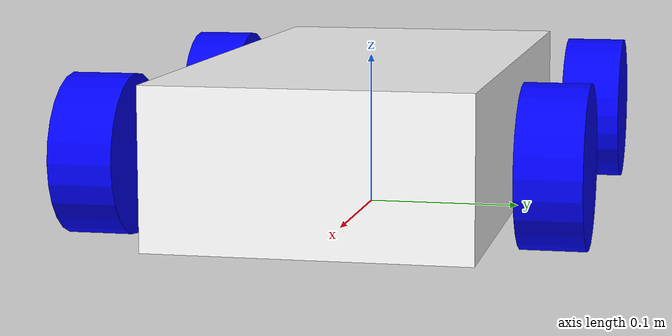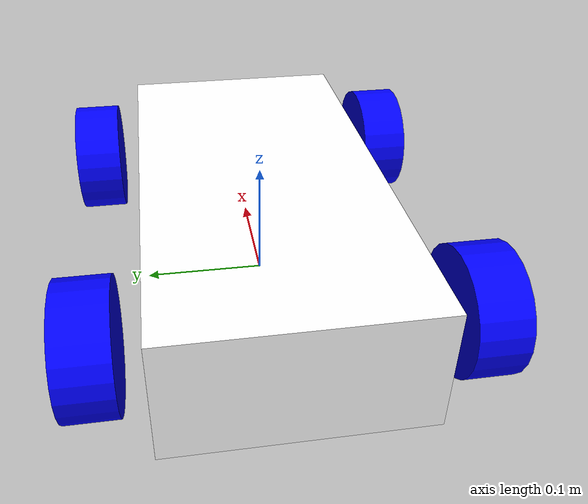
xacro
<?xml version="1.0"?>
<robot xmlns:xacro="http://www.ros.org/wiki/xacro" name="urdf_tutorial">

    <xacro:include filename="macros.xacro"/>

    <material name="white">
        <color rgba="1 1 1 1" />
    </material>
    <material name="blue">
        <color rgba="0 0 1 1"/>
    </material>
    <material name="black">
        <color rgba="0 0 0 1"/>
    </material>

    <link name="base_link">
    </link>

    <joint name="chassis_joint" type="fixed">
        <parent link="base_link"/>
        <child link="chassis"/>
        <origin xyz="-0.1 0 0"/>
    </joint>

    <link name="chassis">
        <visual>
            <origin xyz="0.1 0 0.05"/>
            <geometry>
                <box size="0.4 0.2 0.1"/>
            </geometry>
            <material name="white"/>
        </visual>
        <collision>
            <origin xyz="0.1 0 0.05"/>
            <geometry>
                <box size="0.4 0.2 0.1"/>
            </geometry>
        </collision>
        <xacro:inertial_box mass="2.0" x="0.4" y="0.2" z="0.1">
            <origin xyz="0.1 0 0.05" rpy="0 0 0"/>
        </xacro:inertial_box>
    </link>
    <gazebo reference="chassis">
        <material>Gazebo/White</material>
    </gazebo>

    <joint name="rear_left_wheel_joint" type="continuous">
        <parent link="base_link"/>
        <child link="rear_left_wheel"/>
        <origin xyz="-0.14 0.14 0.05" rpy="-${pi/2} 0 0" />
        <axis xyz="0 0 1"/>
		<limit effort="200" velocity="20.0"/>
    </joint>

    <link name="rear_left_wheel">
        <visual>
            <geometry>
                <cylinder radius="0.05" length="0.04"/>
            </geometry>
            <material name="blue"/>
        </visual>
        <collision>
            <geometry>
                <cylinder radius="0.05" length="0.04"/>
            </geometry>
        </collision>
        <xacro:inertial_cylinder mass="0.2" length="0.04" radius="0.05">
            <origin xyz="0 0 0" rpy="0 0 0"/>
        </xacro:inertial_cylinder>
    </link>
    <gazebo reference="rear_left_wheel">
        <material>Gazebo/Blue</material>
    </gazebo>

    <joint name="rear_right_wheel_joint" type="continuous">
        <parent link="base_link"/>
        <child link="rear_right_wheel"/>
        <origin xyz="-0.14 -0.14 0.05" rpy="${pi/2} 0 0" />
        <axis xyz="0 0 -1"/>
		<limit effort="200" velocity="20.0"/>
    </joint>

    <link name="rear_right_wheel">
        <visual>
            <geometry>
                <cylinder radius="0.05" length="0.04"/>
            </geometry>
            <material name="blue"/>
        </visual>
        <collision>
            <geometry>
                <cylinder radius="0.05" length="0.04"/>
            </geometry>
        </collision>
        <xacro:inertial_cylinder mass="0.2" length="0.04" radius="0.05">
            <origin xyz="0 0 0" rpy="0 0 0"/>
        </xacro:inertial_cylinder>
    </link>
    <gazebo reference="rear_right_wheel">
        <material>Gazebo/Blue</material>
    </gazebo>

    <joint name="front_left_steer_joint" type="revolute">
        <parent link="base_link"/>
        <child link="front_left_steer_link"/>
        <origin xyz="0.14 0.14 0.05" rpy="0 0 0"/>
        <axis xyz="0 0 1"/>
        <limit lower="-0.6" upper="0.6" effort="10.0" velocity="10.0"/>
    </joint>
    <link name="front_left_steer_link">
        <visual>
            <geometry>
                <cylinder radius="0.01" length="0.01"/>
            </geometry>
            <material name="black"/>
        </visual>
        <xacro:inertial_cylinder mass="0.5" length="0.01" radius="0.1">
            <origin xyz="0 0 0" rpy="0 0 0"/>
        </xacro:inertial_cylinder>
    </link>

    <joint name="front_left_wheel_joint" type="continuous">
        <parent link="front_left_steer_link"/>
        <child link="front_left_wheel"/>
        <origin xyz="0 0 0" rpy="-${pi/2} 0 0"/>
        <axis xyz="0 0 1"/>
    </joint>
    <link name="front_left_wheel">
        <visual>
            <geometry>
                <cylinder radius="0.05" length="0.04"/>
            </geometry>
            <material name="blue"/>
        </visual>
        <collision>
            <geometry>
                <cylinder radius="0.05" length="0.04"/>
            </geometry>
        </collision>
        <xacro:inertial_cylinder mass="0.2" length="0.04" radius="0.05">
            <origin xyz="0 0 0" rpy="0 0 0"/>
        </xacro:inertial_cylinder>
    </link>
    <gazebo reference="front_left_wheel">
        <material>Gazebo/Blue</material>
    </gazebo>

    <joint name="front_right_steer_joint" type="revolute">
        <parent link="base_link"/>
        <child link="front_right_steer_link"/>
        <origin xyz="0.14 -0.14 0.05" rpy="0 0 0"/>
        <axis xyz="0 0 1"/>
        <limit lower="-0.6" upper="0.6" effort="10.0" velocity="10.0"/>
    </joint>
    <link name="front_right_steer_link">
         <visual>
            <geometry>
                <cylinder radius="0.01" length="0.01"/>
            </geometry>
            <material name="black"/>
        </visual>
        <xacro:inertial_cylinder mass="0.5" length="0.01" radius="0.1">
            <origin xyz="0 0 0" rpy="0 0 0"/>
        </xacro:inertial_cylinder>
    </link>

    <joint name="front_right_wheel_joint" type="continuous">
        <parent link="front_right_steer_link"/>
        <child link="front_right_wheel"/>
        <origin xyz="0 0 0" rpy="${pi/2} 0 0"/>
        <axis xyz="0 0 -1"/>
    </joint>
    <link name="front_right_wheel">
        <visual>
            <geometry>
                <cylinder radius="0.05" length="0.04"/>
            </geometry>
            <material name="blue"/>
        </visual>
        <collision>
            <geometry>
                <cylinder radius="0.05" length="0.04"/>
            </geometry>
        </collision>
        <xacro:inertial_cylinder mass="0.2" length="0.04" radius="0.05">
            <origin xyz="0 0 0" rpy="0 0 0"/>
        </xacro:inertial_cylinder>
    </link>
    <gazebo reference="front_right_wheel">
        <material>Gazebo/Blue</material>
    </gazebo>

    <xacro:include filename="gazebo_ackermann.xacro"/>

</robot>
